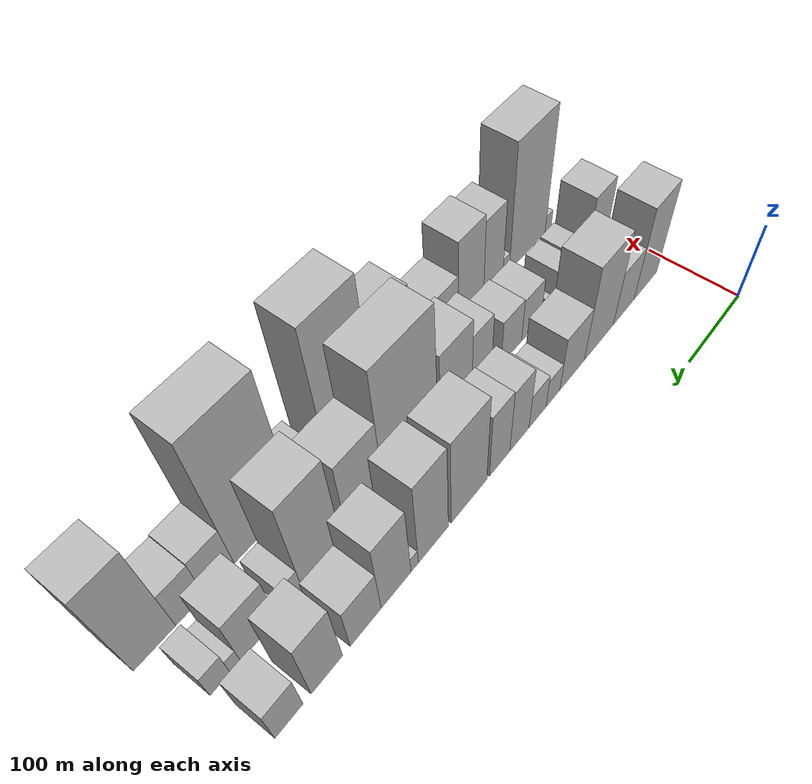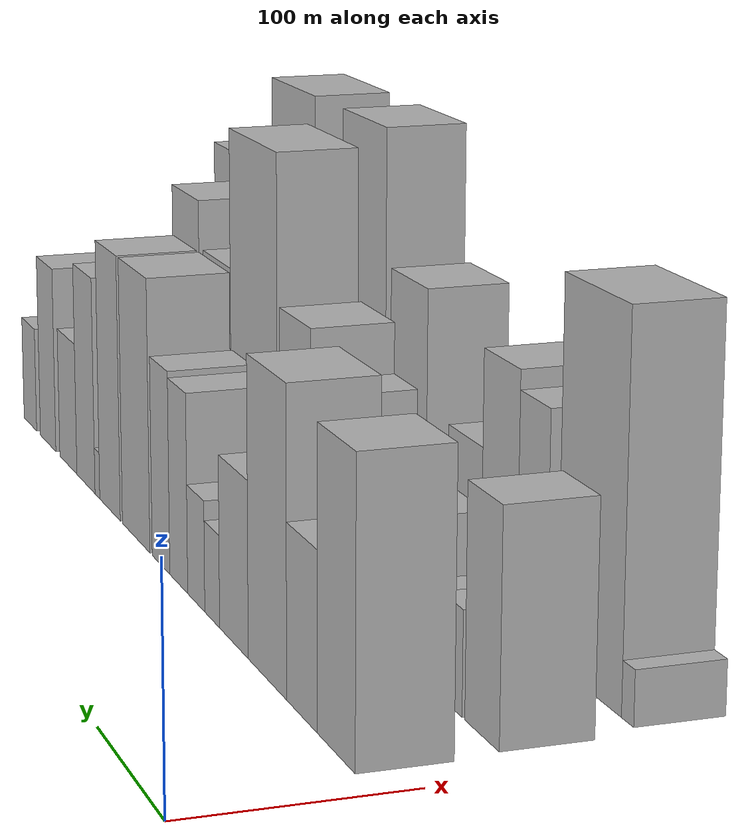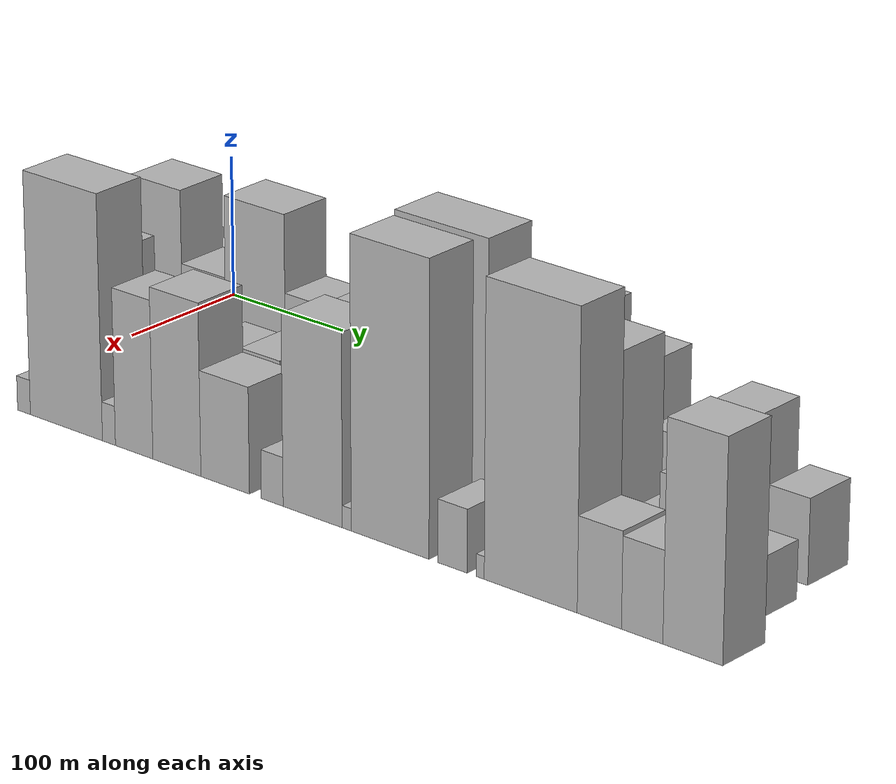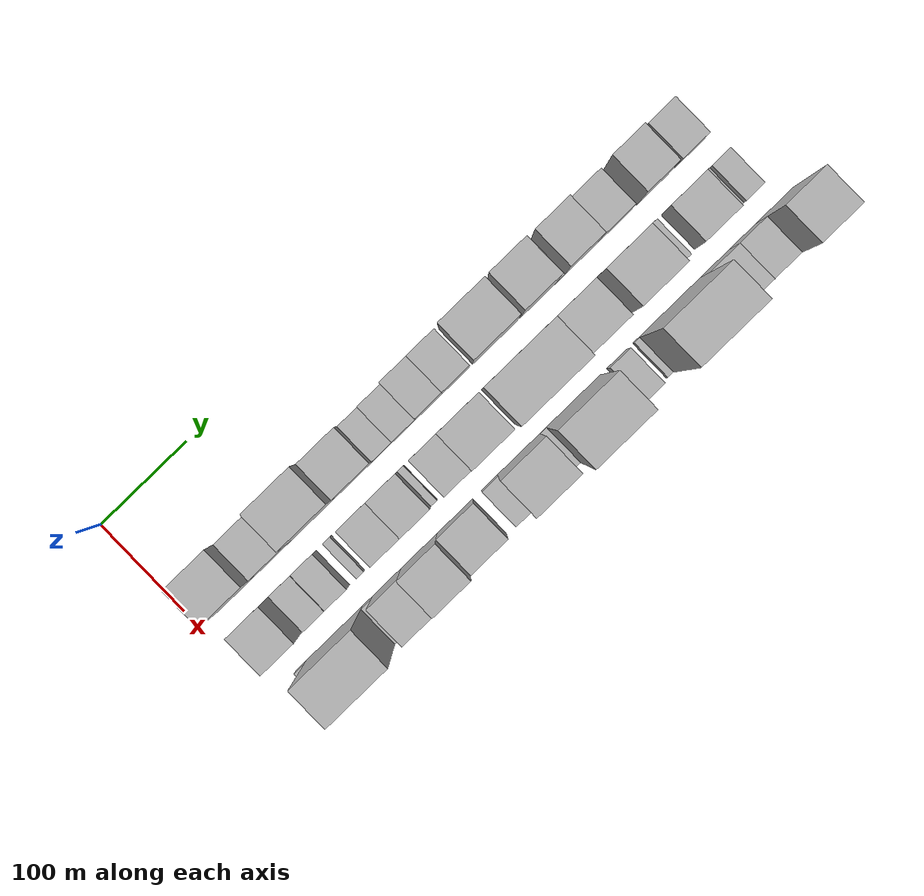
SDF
<sdf version="1.6">
 <world name="default">
  <model name="building_15">
   <static>1</static>
   <pose>100.0000 43.9420 0 0.000000 0.000000 0.000000</pose>
   <link name="link">
    <pose>0 0 63.00 0 0 0</pose>
    <collision name="collision"><geometry><box><size>40.0000 45.1230 126.0000</size></box></geometry></collision>
    <visual name="visual">
     <cast_shadows>0</cast_shadows>
     <geometry><box><size>40.0000 45.1230 126.0000</size></box></geometry>
     <material>
      <script>
       <uri>model://HANNAS_wall/materials/scripts</uri>
       <uri>model://HANNAS_wall/materials/textures</uri>
       <name>vrc/HANNAS_wall</name>
      </script>
     </material>
    </visual>
   </link>
  </model>
  <model name="building_16">
   <static>1</static>
   <pose>100.0000 85.9901 0 0.000000 0.000000 0.000000</pose>
   <link name="link">
    <pose>0 0 37.50 0 0 0</pose>
    <collision name="collision"><geometry><box><size>40.0000 38.9731 75.0000</size></box></geometry></collision>
    <visual name="visual">
     <cast_shadows>0</cast_shadows>
     <geometry><box><size>40.0000 38.9731 75.0000</size></box></geometry>
     <material>
      <script>
       <uri>model://HANNAS_wall/materials/scripts</uri>
       <uri>model://HANNAS_wall/materials/textures</uri>
       <name>vrc/HANNAS_wall</name>
      </script>
     </material>
    </visual>
   </link>
  </model>
  <model name="building_17">
   <static>1</static>
   <pose>100.0000 131.7560 0 0.000000 0.000000 0.000000</pose>
   <link name="link">
    <pose>0 0 66.00 0 0 0</pose>
    <collision name="collision"><geometry><box><size>40.0000 52.5588 132.0000</size></box></geometry></collision>
    <visual name="visual">
     <cast_shadows>0</cast_shadows>
     <geometry><box><size>40.0000 52.5588 132.0000</size></box></geometry>
     <material>
      <script>
       <uri>model://HANNAS_wall/materials/scripts</uri>
       <uri>model://HANNAS_wall/materials/textures</uri>
       <name>vrc/HANNAS_wall</name>
      </script>
     </material>
    </visual>
   </link>
  </model>
  <model name="building_18">
   <static>1</static>
   <pose>100.0000 179.0775 0 0.000000 0.000000 0.000000</pose>
   <link name="link">
    <pose>0 0 39.00 0 0 0</pose>
    <collision name="collision"><geometry><box><size>40.0000 42.0843 78.0000</size></box></geometry></collision>
    <visual name="visual">
     <cast_shadows>0</cast_shadows>
     <geometry><box><size>40.0000 42.0843 78.0000</size></box></geometry>
     <material>
      <script>
       <uri>model://HANNAS_wall/materials/scripts</uri>
       <uri>model://HANNAS_wall/materials/textures</uri>
       <name>vrc/HANNAS_wall</name>
      </script>
     </material>
    </visual>
   </link>
  </model>
  <model name="building_19">
   <static>1</static>
   <pose>100.0000 211.5534 0 0.000000 0.000000 0.000000</pose>
   <link name="link">
    <pose>0 0 21.00 0 0 0</pose>
    <collision name="collision"><geometry><box><size>40.0000 22.8676 42.0000</size></box></geometry></collision>
    <visual name="visual">
     <cast_shadows>0</cast_shadows>
     <geometry><box><size>40.0000 22.8676 42.0000</size></box></geometry>
     <material>
      <script>
       <uri>model://HANNAS_wall/materials/scripts</uri>
       <uri>model://HANNAS_wall/materials/textures</uri>
       <name>vrc/HANNAS_wall</name>
      </script>
     </material>
    </visual>
   </link>
  </model>
  <model name="building_20">
   <static>1</static>
   <pose>100.0000 236.6745 0 0.000000 0.000000 0.000000</pose>
   <link name="link">
    <pose>0 0 25.50 0 0 0</pose>
    <collision name="collision"><geometry><box><size>40.0000 27.3745 51.0000</size></box></geometry></collision>
    <visual name="visual">
     <cast_shadows>0</cast_shadows>
     <geometry><box><size>40.0000 27.3745 51.0000</size></box></geometry>
     <material>
      <script>
       <uri>model://HANNAS_wall/materials/scripts</uri>
       <uri>model://HANNAS_wall/materials/textures</uri>
       <name>vrc/HANNAS_wall</name>
      </script>
     </material>
    </visual>
   </link>
  </model>
  <model name="building_21">
   <static>1</static>
   <pose>100.0000 265.3255 0 0.000000 0.000000 0.000000</pose>
   <link name="link">
    <pose>0 0 46.50 0 0 0</pose>
    <collision name="collision"><geometry><box><size>40.0000 29.9275 93.0000</size></box></geometry></collision>
    <visual name="visual">
     <cast_shadows>0</cast_shadows>
     <geometry><box><size>40.0000 29.9275 93.0000</size></box></geometry>
     <material>
      <script>
       <uri>model://HANNAS_wall/materials/scripts</uri>
       <uri>model://HANNAS_wall/materials/textures</uri>
       <name>vrc/HANNAS_wall</name>
      </script>
     </material>
    </visual>
   </link>
  </model>
  <model name="building_22">
   <static>1</static>
   <pose>100.0000 295.5824 0 0.000000 0.000000 0.000000</pose>
   <link name="link">
    <pose>0 0 48.00 0 0 0</pose>
    <collision name="collision"><geometry><box><size>40.0000 30.5863 96.0000</size></box></geometry></collision>
    <visual name="visual">
     <cast_shadows>0</cast_shadows>
     <geometry><box><size>40.0000 30.5863 96.0000</size></box></geometry>
     <material>
      <script>
       <uri>model://HANNAS_wall/materials/scripts</uri>
       <uri>model://HANNAS_wall/materials/textures</uri>
       <name>vrc/HANNAS_wall</name>
      </script>
     </material>
    </visual>
   </link>
  </model>
  <model name="building_23">
   <static>1</static>
   <pose>100.0000 340.3193 0 0.000000 0.000000 0.000000</pose>
   <link name="link">
    <pose>0 0 66.00 0 0 0</pose>
    <collision name="collision"><geometry><box><size>40.0000 50.8875 132.0000</size></box></geometry></collision>
    <visual name="visual">
     <cast_shadows>0</cast_shadows>
     <geometry><box><size>40.0000 50.8875 132.0000</size></box></geometry>
     <material>
      <script>
       <uri>model://HANNAS_wall/materials/scripts</uri>
       <uri>model://HANNAS_wall/materials/textures</uri>
       <name>vrc/HANNAS_wall</name>
      </script>
     </material>
    </visual>
   </link>
  </model>
  <model name="building_24">
   <static>1</static>
   <pose>100.0000 390.0268 0 0.000000 0.000000 0.000000</pose>
   <link name="link">
    <pose>0 0 66.00 0 0 0</pose>
    <collision name="collision"><geometry><box><size>40.0000 40.5276 132.0000</size></box></geometry></collision>
    <visual name="visual">
     <cast_shadows>0</cast_shadows>
     <geometry><box><size>40.0000 40.5276 132.0000</size></box></geometry>
     <material>
      <script>
       <uri>model://HANNAS_wall/materials/scripts</uri>
       <uri>model://HANNAS_wall/materials/textures</uri>
       <name>vrc/HANNAS_wall</name>
      </script>
     </material>
    </visual>
   </link>
  </model>
  <model name="building_25">
   <static>1</static>
   <pose>100.0000 415.1242 0 0.000000 0.000000 0.000000</pose>
   <link name="link">
    <pose>0 0 12.00 0 0 0</pose>
    <collision name="collision"><geometry><box><size>40.0000 9.6672 24.0000</size></box></geometry></collision>
    <visual name="visual">
     <cast_shadows>0</cast_shadows>
     <geometry><box><size>40.0000 9.6672 24.0000</size></box></geometry>
     <material>
      <script>
       <uri>model://HANNAS_wall/materials/scripts</uri>
       <uri>model://HANNAS_wall/materials/textures</uri>
       <name>vrc/HANNAS_wall</name>
      </script>
     </material>
    </visual>
   </link>
  </model>
  <model name="building_26">
   <static>1</static>
   <pose>100.0000 438.9646 0 0.000000 0.000000 0.000000</pose>
   <link name="link">
    <pose>0 0 55.50 0 0 0</pose>
    <collision name="collision"><geometry><box><size>40.0000 38.0136 111.0000</size></box></geometry></collision>
    <visual name="visual">
     <cast_shadows>0</cast_shadows>
     <geometry><box><size>40.0000 38.0136 111.0000</size></box></geometry>
     <material>
      <script>
       <uri>model://HANNAS_wall/materials/scripts</uri>
       <uri>model://HANNAS_wall/materials/textures</uri>
       <name>vrc/HANNAS_wall</name>
      </script>
     </material>
    </visual>
   </link>
  </model>
  <model name="building_27">
   <static>1</static>
   <pose>100.0000 476.7719 0 0.000000 0.000000 0.000000</pose>
   <link name="link">
    <pose>0 0 34.50 0 0 0</pose>
    <collision name="collision"><geometry><box><size>40.0000 37.6010 69.0000</size></box></geometry></collision>
    <visual name="visual">
     <cast_shadows>0</cast_shadows>
     <geometry><box><size>40.0000 37.6010 69.0000</size></box></geometry>
     <material>
      <script>
       <uri>model://HANNAS_wall/materials/scripts</uri>
       <uri>model://HANNAS_wall/materials/textures</uri>
       <name>vrc/HANNAS_wall</name>
      </script>
     </material>
    </visual>
   </link>
  </model>
  <model name="building_28">
   <static>1</static>
   <pose>100.0000 522.5109 0 0.000000 0.000000 0.000000</pose>
   <link name="link">
    <pose>0 0 49.50 0 0 0</pose>
    <collision name="collision"><geometry><box><size>40.0000 35.8769 99.0000</size></box></geometry></collision>
    <visual name="visual">
     <cast_shadows>0</cast_shadows>
     <geometry><box><size>40.0000 35.8769 99.0000</size></box></geometry>
     <material>
      <script>
       <uri>model://HANNAS_wall/materials/scripts</uri>
       <uri>model://HANNAS_wall/materials/textures</uri>
       <name>vrc/HANNAS_wall</name>
      </script>
     </material>
    </visual>
   </link>
  </model>
  <model name="building_29">
   <static>1</static>
   <pose>100.0000 564.7306 0 0.000000 0.000000 0.000000</pose>
   <link name="link">
    <pose>0 0 28.50 0 0 0</pose>
    <collision name="collision"><geometry><box><size>40.0000 30.5626 57.0000</size></box></geometry></collision>
    <visual name="visual">
     <cast_shadows>0</cast_shadows>
     <geometry><box><size>40.0000 30.5626 57.0000</size></box></geometry>
     <material>
      <script>
       <uri>model://HANNAS_wall/materials/scripts</uri>
       <uri>model://HANNAS_wall/materials/textures</uri>
       <name>vrc/HANNAS_wall</name>
      </script>
     </material>
    </visual>
   </link>
  </model>
  <model name="building_48">
   <static>1</static>
   <pose>160.0000 43.3925 0 0.000000 0.000000 0.000000</pose>
   <link name="link">
    <pose>0 0 49.50 0 0 0</pose>
    <collision name="collision"><geometry><box><size>40.0000 36.4776 99.0000</size></box></geometry></collision>
    <visual name="visual">
     <cast_shadows>0</cast_shadows>
     <geometry><box><size>40.0000 36.4776 99.0000</size></box></geometry>
     <material>
      <script>
       <uri>model://HANNAS_wall/materials/scripts</uri>
       <uri>model://HANNAS_wall/materials/textures</uri>
       <name>vrc/HANNAS_wall</name>
      </script>
     </material>
    </visual>
   </link>
  </model>
  <model name="building_49">
   <static>1</static>
   <pose>160.0000 76.7657 0 0.000000 0.000000 0.000000</pose>
   <link name="link">
    <pose>0 0 22.50 0 0 0</pose>
    <collision name="collision"><geometry><box><size>40.0000 24.2688 45.0000</size></box></geometry></collision>
    <visual name="visual">
     <cast_shadows>0</cast_shadows>
     <geometry><box><size>40.0000 24.2688 45.0000</size></box></geometry>
     <material>
      <script>
       <uri>model://HANNAS_wall/materials/scripts</uri>
       <uri>model://HANNAS_wall/materials/textures</uri>
       <name>vrc/HANNAS_wall</name>
      </script>
     </material>
    </visual>
   </link>
  </model>
  <model name="building_50">
   <static>1</static>
   <pose>160.0000 101.3838 0 0.000000 0.000000 0.000000</pose>
   <link name="link">
    <pose>0 0 21.00 0 0 0</pose>
    <collision name="collision"><geometry><box><size>40.0000 24.9673 42.0000</size></box></geometry></collision>
    <visual name="visual">
     <cast_shadows>0</cast_shadows>
     <geometry><box><size>40.0000 24.9673 42.0000</size></box></geometry>
     <material>
      <script>
       <uri>model://HANNAS_wall/materials/scripts</uri>
       <uri>model://HANNAS_wall/materials/textures</uri>
       <name>vrc/HANNAS_wall</name>
      </script>
     </material>
    </visual>
   </link>
  </model>
  <model name="building_51">
   <static>1</static>
   <pose>160.0000 127.2088 0 0.000000 0.000000 0.000000</pose>
   <link name="link">
    <pose>0 0 9.00 0 0 0</pose>
    <collision name="collision"><geometry><box><size>40.0000 8.6827 18.0000</size></box></geometry></collision>
    <visual name="visual">
     <cast_shadows>0</cast_shadows>
     <geometry><box><size>40.0000 8.6827 18.0000</size></box></geometry>
     <material>
      <script>
       <uri>model://HANNAS_wall/materials/scripts</uri>
       <uri>model://HANNAS_wall/materials/textures</uri>
       <name>vrc/HANNAS_wall</name>
      </script>
     </material>
    </visual>
   </link>
  </model>
  <model name="building_52">
   <static>1</static>
   <pose>160.0000 158.1198 0 0.000000 0.000000 0.000000</pose>
   <link name="link">
    <pose>0 0 30.00 0 0 0</pose>
    <collision name="collision"><geometry><box><size>40.0000 33.1394 60.0000</size></box></geometry></collision>
    <visual name="visual">
     <cast_shadows>0</cast_shadows>
     <geometry><box><size>40.0000 33.1394 60.0000</size></box></geometry>
     <material>
      <script>
       <uri>model://HANNAS_wall/materials/scripts</uri>
       <uri>model://HANNAS_wall/materials/textures</uri>
       <name>vrc/HANNAS_wall</name>
      </script>
     </material>
    </visual>
   </link>
  </model>
  <model name="building_53">
   <static>1</static>
   <pose>160.0000 191.5891 0 0.000000 0.000000 0.000000</pose>
   <link name="link">
    <pose>0 0 31.50 0 0 0</pose>
    <collision name="collision"><geometry><box><size>40.0000 33.7992 63.0000</size></box></geometry></collision>
    <visual name="visual">
     <cast_shadows>0</cast_shadows>
     <geometry><box><size>40.0000 33.7992 63.0000</size></box></geometry>
     <material>
      <script>
       <uri>model://HANNAS_wall/materials/scripts</uri>
       <uri>model://HANNAS_wall/materials/textures</uri>
       <name>vrc/HANNAS_wall</name>
      </script>
     </material>
    </visual>
   </link>
  </model>
  <model name="building_54">
   <static>1</static>
   <pose>160.0000 211.9809 0 0.000000 0.000000 0.000000</pose>
   <link name="link">
    <pose>0 0 7.50 0 0 0</pose>
    <collision name="collision"><geometry><box><size>40.0000 6.9846 15.0000</size></box></geometry></collision>
    <visual name="visual">
     <cast_shadows>0</cast_shadows>
     <geometry><box><size>40.0000 6.9846 15.0000</size></box></geometry>
     <material>
      <script>
       <uri>model://HANNAS_wall/materials/scripts</uri>
       <uri>model://HANNAS_wall/materials/textures</uri>
       <name>vrc/HANNAS_wall</name>
      </script>
     </material>
    </visual>
   </link>
  </model>
  <model name="building_55">
   <static>1</static>
   <pose>160.0000 239.7272 0 0.000000 0.000000 0.000000</pose>
   <link name="link">
    <pose>0 0 46.50 0 0 0</pose>
    <collision name="collision"><geometry><box><size>40.0000 30.5080 93.0000</size></box></geometry></collision>
    <visual name="visual">
     <cast_shadows>0</cast_shadows>
     <geometry><box><size>40.0000 30.5080 93.0000</size></box></geometry>
     <material>
      <script>
       <uri>model://HANNAS_wall/materials/scripts</uri>
       <uri>model://HANNAS_wall/materials/textures</uri>
       <name>vrc/HANNAS_wall</name>
      </script>
     </material>
    </visual>
   </link>
  </model>
  <model name="building_56">
   <static>1</static>
   <pose>160.0000 278.0785 0 0.000000 0.000000 0.000000</pose>
   <link name="link">
    <pose>0 0 58.50 0 0 0</pose>
    <collision name="collision"><geometry><box><size>40.0000 46.1947 117.0000</size></box></geometry></collision>
    <visual name="visual">
     <cast_shadows>0</cast_shadows>
     <geometry><box><size>40.0000 46.1947 117.0000</size></box></geometry>
     <material>
      <script>
       <uri>model://HANNAS_wall/materials/scripts</uri>
       <uri>model://HANNAS_wall/materials/textures</uri>
       <name>vrc/HANNAS_wall</name>
      </script>
     </material>
    </visual>
   </link>
  </model>
  <model name="building_57">
   <static>1</static>
   <pose>160.0000 342.6953 0 0.000000 0.000000 0.000000</pose>
   <link name="link">
    <pose>0 0 94.50 0 0 0</pose>
    <collision name="collision"><geometry><box><size>40.0000 75.0389 189.0000</size></box></geometry></collision>
    <visual name="visual">
     <cast_shadows>0</cast_shadows>
     <geometry><box><size>40.0000 75.0389 189.0000</size></box></geometry>
     <material>
      <script>
       <uri>model://HANNAS_wall/materials/scripts</uri>
       <uri>model://HANNAS_wall/materials/textures</uri>
       <name>vrc/HANNAS_wall</name>
      </script>
     </material>
    </visual>
   </link>
  </model>
  <model name="building_58">
   <static>1</static>
   <pose>160.0000 403.9461 0 0.000000 0.000000 0.000000</pose>
   <link name="link">
    <pose>0 0 60.00 0 0 0</pose>
    <collision name="collision"><geometry><box><size>40.0000 47.4627 120.0000</size></box></geometry></collision>
    <visual name="visual">
     <cast_shadows>0</cast_shadows>
     <geometry><box><size>40.0000 47.4627 120.0000</size></box></geometry>
     <material>
      <script>
       <uri>model://HANNAS_wall/materials/scripts</uri>
       <uri>model://HANNAS_wall/materials/textures</uri>
       <name>vrc/HANNAS_wall</name>
      </script>
     </material>
    </visual>
   </link>
  </model>
  <model name="building_59">
   <static>1</static>
   <pose>160.0000 431.3256 0 0.000000 0.000000 0.000000</pose>
   <link name="link">
    <pose>0 0 9.00 0 0 0</pose>
    <collision name="collision"><geometry><box><size>40.0000 7.2962 18.0000</size></box></geometry></collision>
    <visual name="visual">
     <cast_shadows>0</cast_shadows>
     <geometry><box><size>40.0000 7.2962 18.0000</size></box></geometry>
     <material>
      <script>
       <uri>model://HANNAS_wall/materials/scripts</uri>
       <uri>model://HANNAS_wall/materials/textures</uri>
       <name>vrc/HANNAS_wall</name>
      </script>
     </material>
    </visual>
   </link>
  </model>
  <model name="building_60">
   <static>1</static>
   <pose>160.0000 459.4407 0 0.000000 0.000000 0.000000</pose>
   <link name="link">
    <pose>0 0 72.00 0 0 0</pose>
    <collision name="collision"><geometry><box><size>40.0000 48.9340 144.0000</size></box></geometry></collision>
    <visual name="visual">
     <cast_shadows>0</cast_shadows>
     <geometry><box><size>40.0000 48.9340 144.0000</size></box></geometry>
     <material>
      <script>
       <uri>model://HANNAS_wall/materials/scripts</uri>
       <uri>model://HANNAS_wall/materials/textures</uri>
       <name>vrc/HANNAS_wall</name>
      </script>
     </material>
    </visual>
   </link>
  </model>
  <model name="building_61">
   <static>1</static>
   <pose>160.0000 493.7902 0 0.000000 0.000000 0.000000</pose>
   <link name="link">
    <pose>0 0 19.50 0 0 0</pose>
    <collision name="collision"><geometry><box><size>40.0000 19.7650 39.0000</size></box></geometry></collision>
    <visual name="visual">
     <cast_shadows>0</cast_shadows>
     <geometry><box><size>40.0000 19.7650 39.0000</size></box></geometry>
     <material>
      <script>
       <uri>model://HANNAS_wall/materials/scripts</uri>
       <uri>model://HANNAS_wall/materials/textures</uri>
       <name>vrc/HANNAS_wall</name>
      </script>
     </material>
    </visual>
   </link>
  </model>
  <model name="building_62">
   <static>1</static>
   <pose>160.0000 534.1097 0 0.000000 0.000000 0.000000</pose>
   <link name="link">
    <pose>0 0 37.50 0 0 0</pose>
    <collision name="collision"><geometry><box><size>40.0000 40.8739 75.0000</size></box></geometry></collision>
    <visual name="visual">
     <cast_shadows>0</cast_shadows>
     <geometry><box><size>40.0000 40.8739 75.0000</size></box></geometry>
     <material>
      <script>
       <uri>model://HANNAS_wall/materials/scripts</uri>
       <uri>model://HANNAS_wall/materials/textures</uri>
       <name>vrc/HANNAS_wall</name>
      </script>
     </material>
    </visual>
   </link>
  </model>
  <model name="building_63">
   <static>1</static>
   <pose>160.0000 560.0519 0 0.000000 0.000000 0.000000</pose>
   <link name="link">
    <pose>0 0 12.00 0 0 0</pose>
    <collision name="collision"><geometry><box><size>40.0000 11.0105 24.0000</size></box></geometry></collision>
    <visual name="visual">
     <cast_shadows>0</cast_shadows>
     <geometry><box><size>40.0000 11.0105 24.0000</size></box></geometry>
     <material>
      <script>
       <uri>model://HANNAS_wall/materials/scripts</uri>
       <uri>model://HANNAS_wall/materials/textures</uri>
       <name>vrc/HANNAS_wall</name>
      </script>
     </material>
    </visual>
   </link>
  </model>
  <model name="building_64">
   <static>1</static>
   <pose>160.0000 576.1776 0 0.000000 0.000000 0.000000</pose>
   <link name="link">
    <pose>0 0 19.50 0 0 0</pose>
    <collision name="collision"><geometry><box><size>40.0000 21.2409 39.0000</size></box></geometry></collision>
    <visual name="visual">
     <cast_shadows>0</cast_shadows>
     <geometry><box><size>40.0000 21.2409 39.0000</size></box></geometry>
     <material>
      <script>
       <uri>model://HANNAS_wall/materials/scripts</uri>
       <uri>model://HANNAS_wall/materials/textures</uri>
       <name>vrc/HANNAS_wall</name>
      </script>
     </material>
    </visual>
   </link>
  </model>
  <model name="building_81">
   <static>1</static>
   <pose>220.0000 38.6133 0 0.000000 0.000000 0.000000</pose>
   <link name="link">
    <pose>0 0 12.00 0 0 0</pose>
    <collision name="collision"><geometry><box><size>40.0000 11.6618 24.0000</size></box></geometry></collision>
    <visual name="visual">
     <cast_shadows>0</cast_shadows>
     <geometry><box><size>40.0000 11.6618 24.0000</size></box></geometry>
     <material>
      <script>
       <uri>model://HANNAS_wall/materials/scripts</uri>
       <uri>model://HANNAS_wall/materials/textures</uri>
       <name>vrc/HANNAS_wall</name>
      </script>
     </material>
    </visual>
   </link>
  </model>
  <model name="building_82">
   <static>1</static>
   <pose>220.0000 76.9229 0 0.000000 0.000000 0.000000</pose>
   <link name="link">
    <pose>0 0 84.00 0 0 0</pose>
    <collision name="collision"><geometry><box><size>40.0000 64.9574 168.0000</size></box></geometry></collision>
    <visual name="visual">
     <cast_shadows>0</cast_shadows>
     <geometry><box><size>40.0000 64.9574 168.0000</size></box></geometry>
     <material>
      <script>
       <uri>model://HANNAS_wall/materials/scripts</uri>
       <uri>model://HANNAS_wall/materials/textures</uri>
       <name>vrc/HANNAS_wall</name>
      </script>
     </material>
    </visual>
   </link>
  </model>
  <model name="building_83">
   <static>1</static>
   <pose>220.0000 115.1582 0 0.000000 0.000000 0.000000</pose>
   <link name="link">
    <pose>0 0 13.50 0 0 0</pose>
    <collision name="collision"><geometry><box><size>40.0000 11.5132 27.0000</size></box></geometry></collision>
    <visual name="visual">
     <cast_shadows>0</cast_shadows>
     <geometry><box><size>40.0000 11.5132 27.0000</size></box></geometry>
     <material>
      <script>
       <uri>model://HANNAS_wall/materials/scripts</uri>
       <uri>model://HANNAS_wall/materials/textures</uri>
       <name>vrc/HANNAS_wall</name>
      </script>
     </material>
    </visual>
   </link>
  </model>
  <model name="building_84">
   <static>1</static>
   <pose>220.0000 137.4270 0 0.000000 0.000000 0.000000</pose>
   <link name="link">
    <pose>0 0 54.00 0 0 0</pose>
    <collision name="collision"><geometry><box><size>40.0000 33.0242 108.0000</size></box></geometry></collision>
    <visual name="visual">
     <cast_shadows>0</cast_shadows>
     <geometry><box><size>40.0000 33.0242 108.0000</size></box></geometry>
     <material>
      <script>
       <uri>model://HANNAS_wall/materials/scripts</uri>
       <uri>model://HANNAS_wall/materials/textures</uri>
       <name>vrc/HANNAS_wall</name>
      </script>
     </material>
    </visual>
   </link>
  </model>
  <model name="building_85">
   <static>1</static>
   <pose>220.0000 174.7877 0 0.000000 0.000000 0.000000</pose>
   <link name="link">
    <pose>0 0 58.50 0 0 0</pose>
    <collision name="collision"><geometry><box><size>40.0000 41.6973 117.0000</size></box></geometry></collision>
    <visual name="visual">
     <cast_shadows>0</cast_shadows>
     <geometry><box><size>40.0000 41.6973 117.0000</size></box></geometry>
     <material>
      <script>
       <uri>model://HANNAS_wall/materials/scripts</uri>
       <uri>model://HANNAS_wall/materials/textures</uri>
       <name>vrc/HANNAS_wall</name>
      </script>
     </material>
    </visual>
   </link>
  </model>
  <model name="building_86">
   <static>1</static>
   <pose>220.0000 216.3850 0 0.000000 0.000000 0.000000</pose>
   <link name="link">
    <pose>0 0 36.00 0 0 0</pose>
    <collision name="collision"><geometry><box><size>40.0000 41.4972 72.0000</size></box></geometry></collision>
    <visual name="visual">
     <cast_shadows>0</cast_shadows>
     <geometry><box><size>40.0000 41.4972 72.0000</size></box></geometry>
     <material>
      <script>
       <uri>model://HANNAS_wall/materials/scripts</uri>
       <uri>model://HANNAS_wall/materials/textures</uri>
       <name>vrc/HANNAS_wall</name>
      </script>
     </material>
    </visual>
   </link>
  </model>
  <model name="building_87">
   <static>1</static>
   <pose>220.0000 256.3079 0 0.000000 0.000000 0.000000</pose>
   <link name="link">
    <pose>0 0 16.50 0 0 0</pose>
    <collision name="collision"><geometry><box><size>40.0000 18.3486 33.0000</size></box></geometry></collision>
    <visual name="visual">
     <cast_shadows>0</cast_shadows>
     <geometry><box><size>40.0000 18.3486 33.0000</size></box></geometry>
     <material>
      <script>
       <uri>model://HANNAS_wall/materials/scripts</uri>
       <uri>model://HANNAS_wall/materials/textures</uri>
       <name>vrc/HANNAS_wall</name>
      </script>
     </material>
    </visual>
   </link>
  </model>
  <model name="building_88">
   <static>1</static>
   <pose>220.0000 290.0962 0 0.000000 0.000000 0.000000</pose>
   <link name="link">
    <pose>0 0 64.50 0 0 0</pose>
    <collision name="collision"><geometry><box><size>40.0000 49.2280 129.0000</size></box></geometry></collision>
    <visual name="visual">
     <cast_shadows>0</cast_shadows>
     <geometry><box><size>40.0000 49.2280 129.0000</size></box></geometry>
     <material>
      <script>
       <uri>model://HANNAS_wall/materials/scripts</uri>
       <uri>model://HANNAS_wall/materials/textures</uri>
       <name>vrc/HANNAS_wall</name>
      </script>
     </material>
    </visual>
   </link>
  </model>
  <model name="building_89">
   <static>1</static>
   <pose>220.0000 318.3504 0 0.000000 0.000000 0.000000</pose>
   <link name="link">
    <pose>0 0 7.50 0 0 0</pose>
    <collision name="collision"><geometry><box><size>40.0000 7.2804 15.0000</size></box></geometry></collision>
    <visual name="visual">
     <cast_shadows>0</cast_shadows>
     <geometry><box><size>40.0000 7.2804 15.0000</size></box></geometry>
     <material>
      <script>
       <uri>model://HANNAS_wall/materials/scripts</uri>
       <uri>model://HANNAS_wall/materials/textures</uri>
       <name>vrc/HANNAS_wall</name>
      </script>
     </material>
    </visual>
   </link>
  </model>
  <model name="building_90">
   <static>1</static>
   <pose>220.0000 353.4693 0 0.000000 0.000000 0.000000</pose>
   <link name="link">
    <pose>0 0 97.50 0 0 0</pose>
    <collision name="collision"><geometry><box><size>40.0000 62.9573 195.0000</size></box></geometry></collision>
    <visual name="visual">
     <cast_shadows>0</cast_shadows>
     <geometry><box><size>40.0000 62.9573 195.0000</size></box></geometry>
     <material>
      <script>
       <uri>model://HANNAS_wall/materials/scripts</uri>
       <uri>model://HANNAS_wall/materials/textures</uri>
       <name>vrc/HANNAS_wall</name>
      </script>
     </material>
    </visual>
   </link>
  </model>
  <model name="building_91">
   <static>1</static>
   <pose>220.0000 403.6260 0 0.000000 0.000000 0.000000</pose>
   <link name="link">
    <pose>0 0 21.00 0 0 0</pose>
    <collision name="collision"><geometry><box><size>40.0000 23.3561 42.0000</size></box></geometry></collision>
    <visual name="visual">
     <cast_shadows>0</cast_shadows>
     <geometry><box><size>40.0000 23.3561 42.0000</size></box></geometry>
     <material>
      <script>
       <uri>model://HANNAS_wall/materials/scripts</uri>
       <uri>model://HANNAS_wall/materials/textures</uri>
       <name>vrc/HANNAS_wall</name>
      </script>
     </material>
    </visual>
   </link>
  </model>
  <model name="building_92">
   <static>1</static>
   <pose>220.0000 425.4784 0 0.000000 0.000000 0.000000</pose>
   <link name="link">
    <pose>0 0 7.50 0 0 0</pose>
    <collision name="collision"><geometry><box><size>40.0000 6.3487 15.0000</size></box></geometry></collision>
    <visual name="visual">
     <cast_shadows>0</cast_shadows>
     <geometry><box><size>40.0000 6.3487 15.0000</size></box></geometry>
     <material>
      <script>
       <uri>model://HANNAS_wall/materials/scripts</uri>
       <uri>model://HANNAS_wall/materials/textures</uri>
       <name>vrc/HANNAS_wall</name>
      </script>
     </material>
    </visual>
   </link>
  </model>
  <model name="building_93">
   <static>1</static>
   <pose>220.0000 464.6049 0 0.000000 0.000000 0.000000</pose>
   <link name="link">
    <pose>0 0 97.50 0 0 0</pose>
    <collision name="collision"><geometry><box><size>40.0000 71.9044 195.0000</size></box></geometry></collision>
    <visual name="visual">
     <cast_shadows>0</cast_shadows>
     <geometry><box><size>40.0000 71.9044 195.0000</size></box></geometry>
     <material>
      <script>
       <uri>model://HANNAS_wall/materials/scripts</uri>
       <uri>model://HANNAS_wall/materials/textures</uri>
       <name>vrc/HANNAS_wall</name>
      </script>
     </material>
    </visual>
   </link>
  </model>
  <model name="building_94">
   <static>1</static>
   <pose>220.0000 517.3134 0 0.000000 0.000000 0.000000</pose>
   <link name="link">
    <pose>0 0 31.50 0 0 0</pose>
    <collision name="collision"><geometry><box><size>40.0000 33.5126 63.0000</size></box></geometry></collision>
    <visual name="visual">
     <cast_shadows>0</cast_shadows>
     <geometry><box><size>40.0000 33.5126 63.0000</size></box></geometry>
     <material>
      <script>
       <uri>model://HANNAS_wall/materials/scripts</uri>
       <uri>model://HANNAS_wall/materials/textures</uri>
       <name>vrc/HANNAS_wall</name>
      </script>
     </material>
    </visual>
   </link>
  </model>
  <model name="building_95">
   <static>1</static>
   <pose>220.0000 549.5509 0 0.000000 0.000000 0.000000</pose>
   <link name="link">
    <pose>0 0 30.00 0 0 0</pose>
    <collision name="collision"><geometry><box><size>40.0000 30.9624 60.0000</size></box></geometry></collision>
    <visual name="visual">
     <cast_shadows>0</cast_shadows>
     <geometry><box><size>40.0000 30.9624 60.0000</size></box></geometry>
     <material>
      <script>
       <uri>model://HANNAS_wall/materials/scripts</uri>
       <uri>model://HANNAS_wall/materials/textures</uri>
       <name>vrc/HANNAS_wall</name>
      </script>
     </material>
    </visual>
   </link>
  </model>
  <model name="building_96">
   <static>1</static>
   <pose>220.0000 587.0620 0 0.000000 0.000000 0.000000</pose>
   <link name="link">
    <pose>0 0 72.00 0 0 0</pose>
    <collision name="collision"><geometry><box><size>40.0000 44.0597 144.0000</size></box></geometry></collision>
    <visual name="visual">
     <cast_shadows>0</cast_shadows>
     <geometry><box><size>40.0000 44.0597 144.0000</size></box></geometry>
     <material>
      <script>
       <uri>model://HANNAS_wall/materials/scripts</uri>
       <uri>model://HANNAS_wall/materials/textures</uri>
       <name>vrc/HANNAS_wall</name>
      </script>
     </material>
    </visual>
   </link>
  </model>
 </world>
</sdf>
